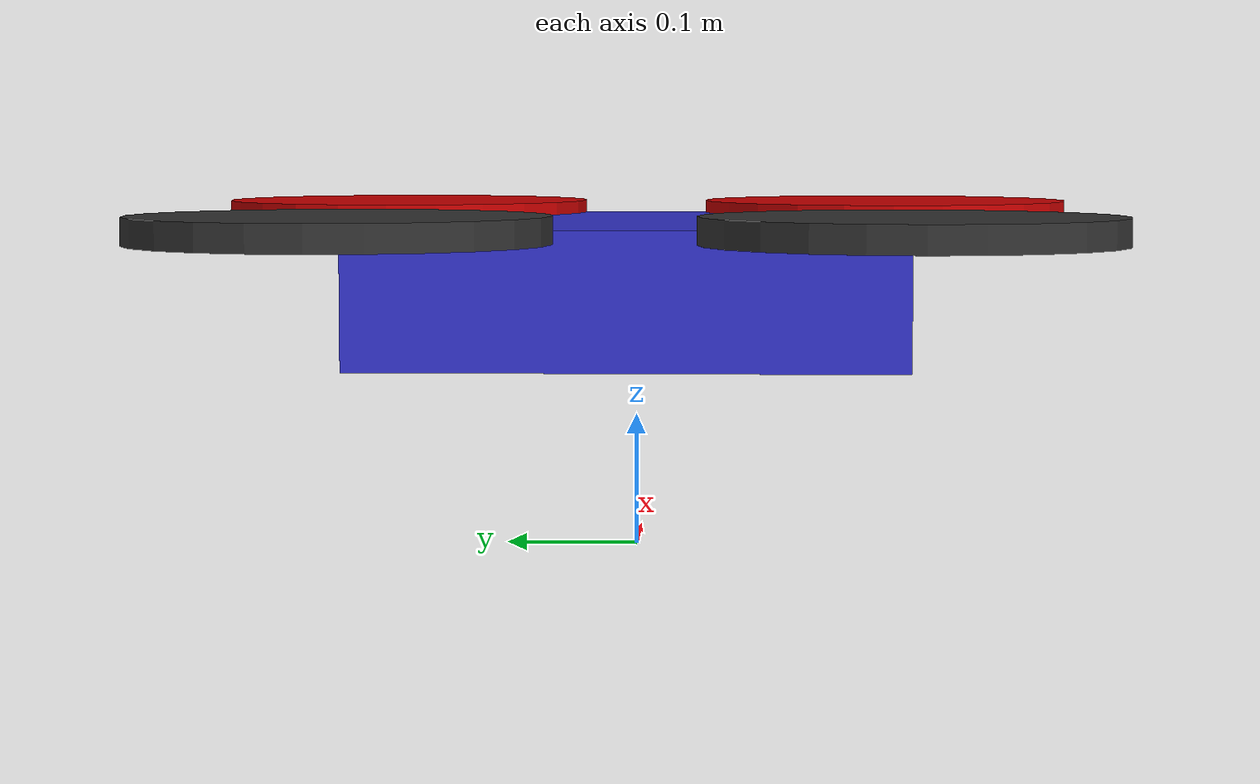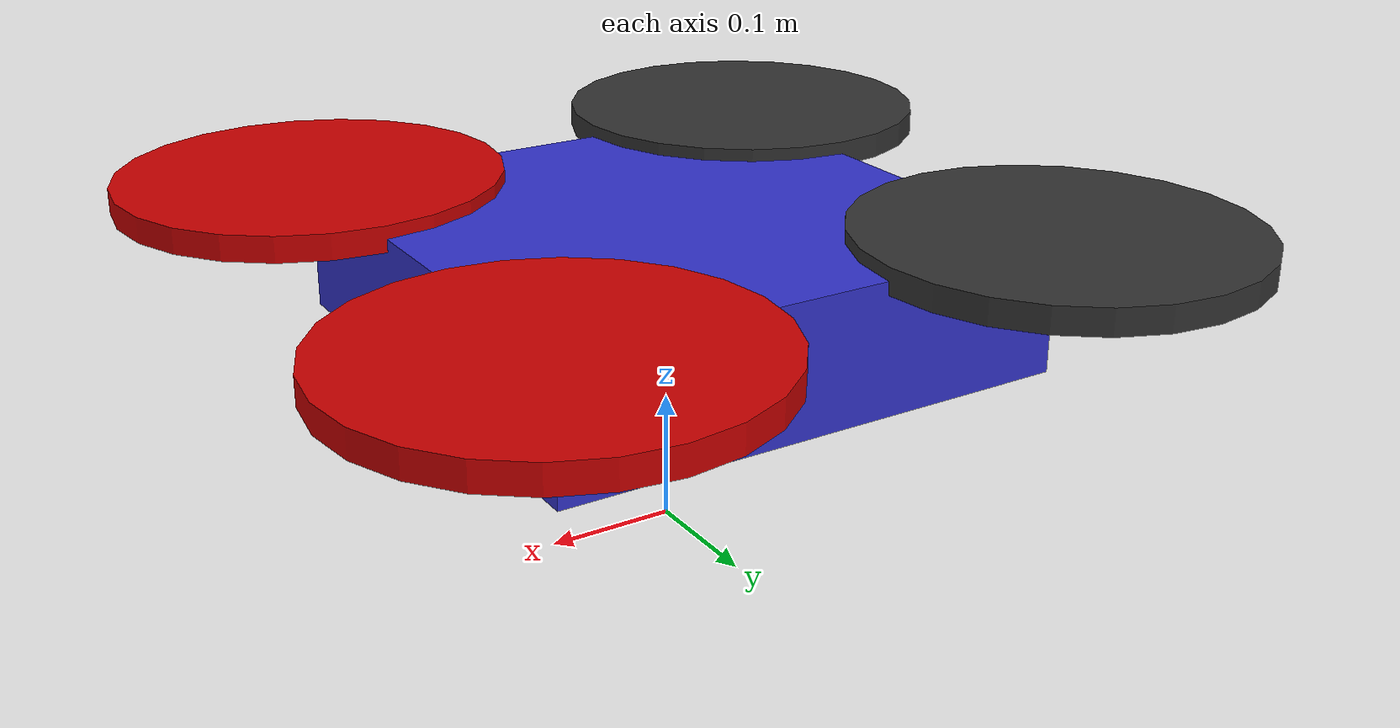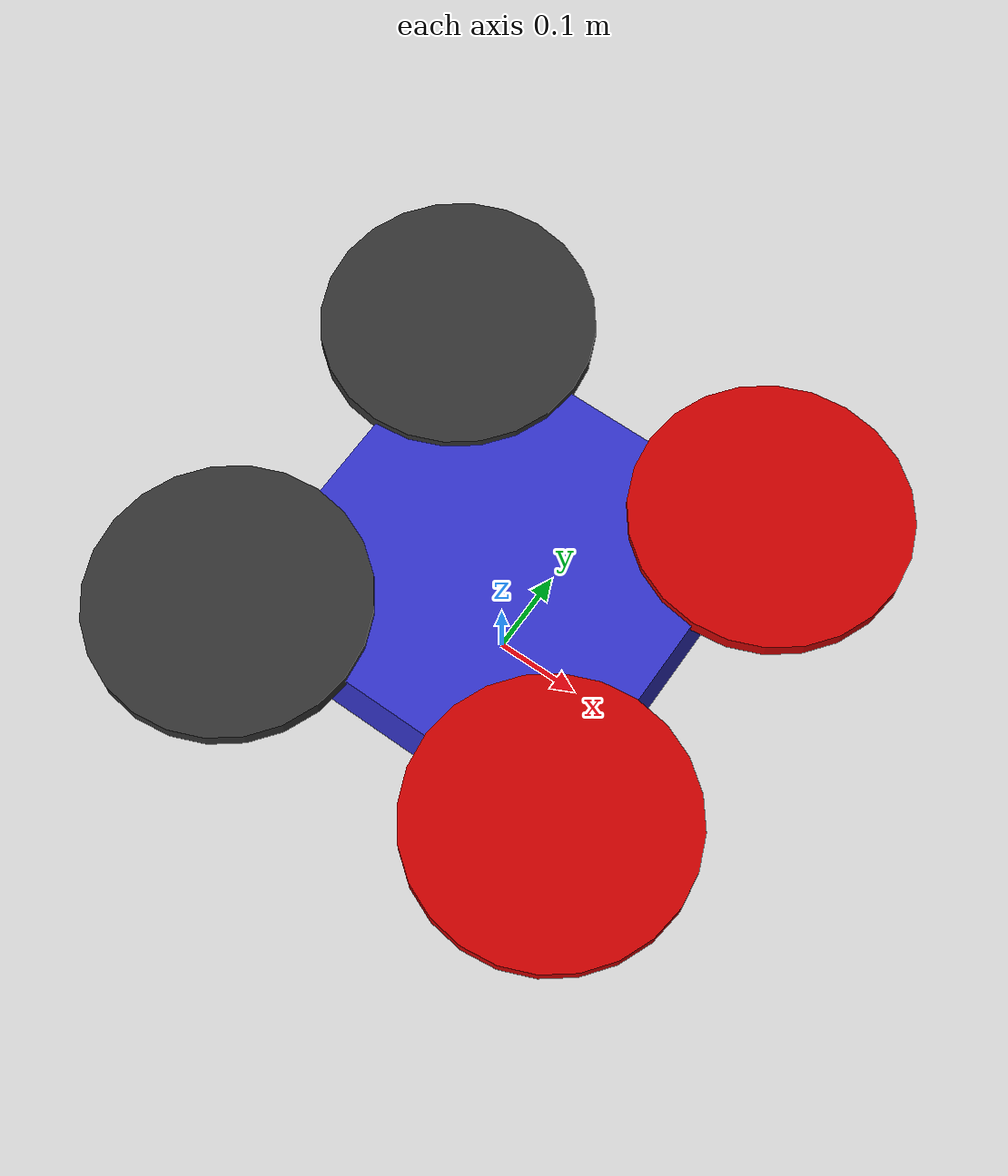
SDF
<?xml version="1.0" ?>
<sdf version="1.7">
  <model name="drone">
    <pose>0 0 0.2 0 0 0</pose>
    <link name="base_link">
      <gravity>0</gravity>

      <collision name="collision">
        <geometry>
          <box>
            <size>0.4 0.4 0.1</size>
          </box>
        </geometry>
      </collision>

      <visual name="body">
        <geometry>
          <box>
            <size>0.4 0.4 0.1</size>
          </box>
        </geometry>
        <material>
          <ambient>0.2 0.2 0.8 1</ambient>
          <diffuse>0.2 0.2 0.8 1</diffuse>
        </material>
      </visual>

      <!-- Propeller placeholders -->
      <visual name="prop_fr">
        <pose>0.2 -0.2 0.05 0 0 0</pose>
        <geometry><cylinder><radius>0.15</radius><length>0.02</length></cylinder></geometry>
        <material><ambient>0.8 0 0 1</ambient></material>
      </visual>
      <visual name="prop_fl">
        <pose>0.2 0.2 0.05 0 0 0</pose>
        <geometry><cylinder><radius>0.15</radius><length>0.02</length></cylinder></geometry>
        <material><ambient>0.8 0 0 1</ambient></material>
      </visual>
      <visual name="prop_br">
        <pose>-0.2 -0.2 0.05 0 0 0</pose>
        <geometry><cylinder><radius>0.15</radius><length>0.02</length></cylinder></geometry>
        <material><ambient>0.2 0.2 0.2 1</ambient></material>
      </visual>
      <visual name="prop_bl">
        <pose>-0.2 0.2 0.05 0 0 0</pose>
        <geometry><cylinder><radius>0.15</radius><length>0.02</length></cylinder></geometry>
        <material><ambient>0.2 0.2 0.2 1</ambient></material>
      </visual>

      <!-- Simulated Camera -->
      <sensor type="camera" name="downward_camera">
        <pose>0 0 -0.05 0 1.5708 0</pose> <!-- Pointing straight down -->
        <update_rate>10.0</update_rate>
        <camera name="head">
          <horizontal_fov>1.3962634</horizontal_fov>
          <image>
            <width>640</width>
            <height>480</height>
            <format>R8G8B8</format>
          </image>
          <clip>
            <near>0.02</near>
            <far>300</far>
          </clip>
        </camera>
        <plugin name="camera_controller" filename="libgazebo_ros_camera.so">
          <alwaysOn>true</alwaysOn>
          <updateRate>0.0</updateRate>
          <cameraName>camera</cameraName>
          <imageTopicName>image_raw</imageTopicName>
          <cameraInfoTopicName>camera_info</cameraInfoTopicName>
          <frameName>camera_link</frameName>
        </plugin>
      </sensor>

    </link>
  </model>
</sdf>
